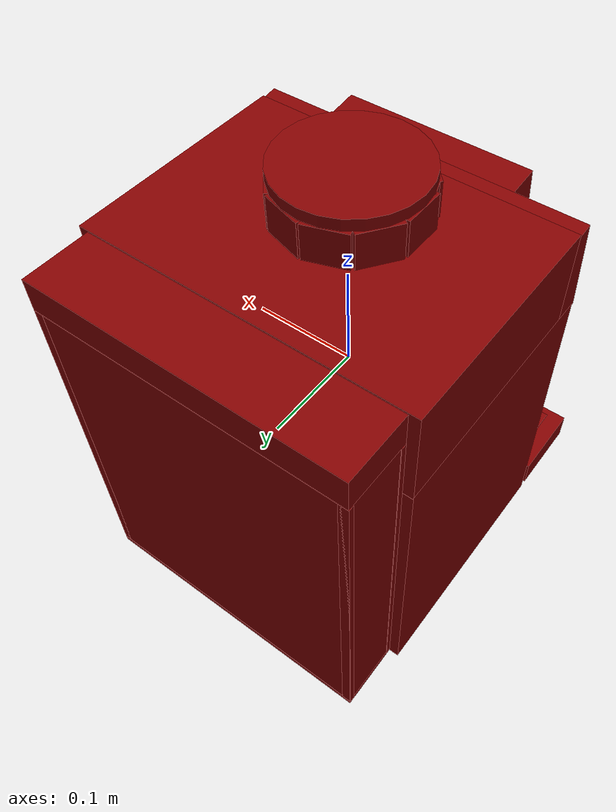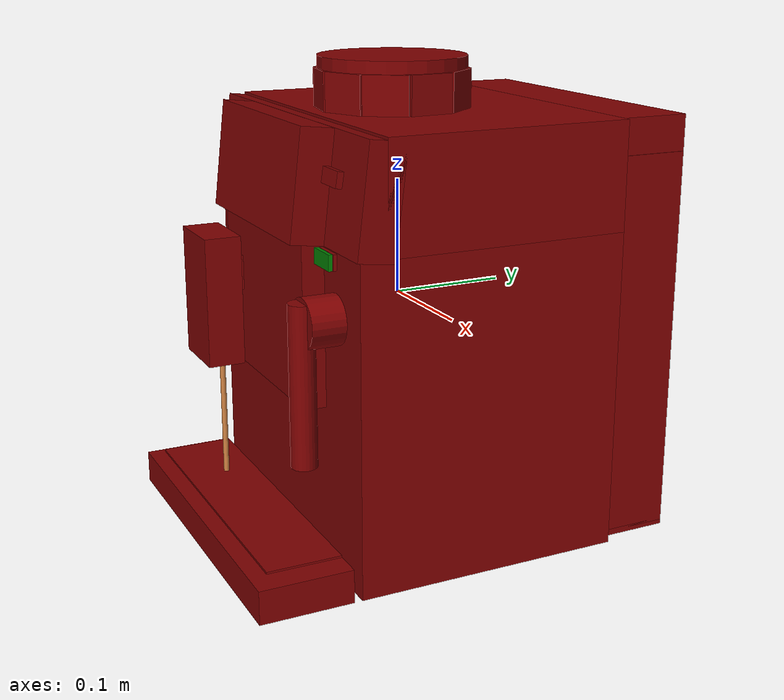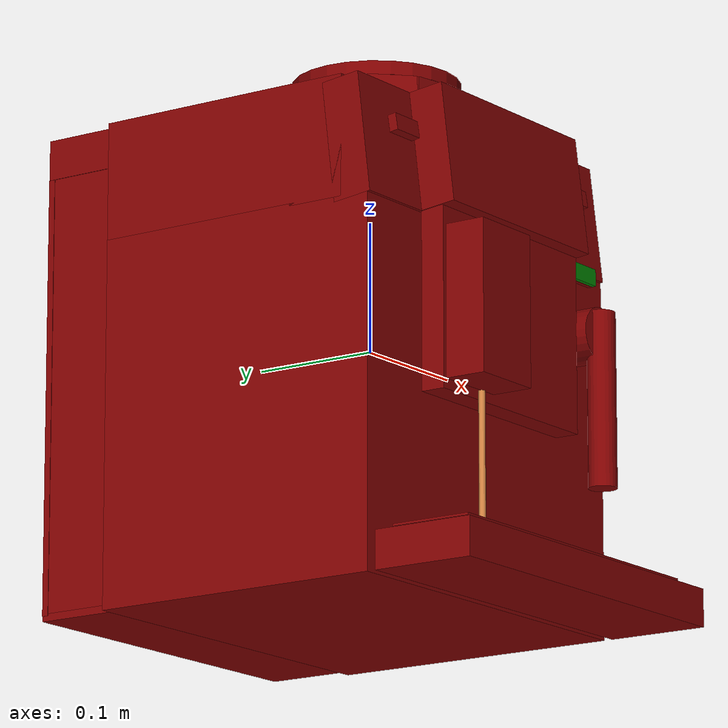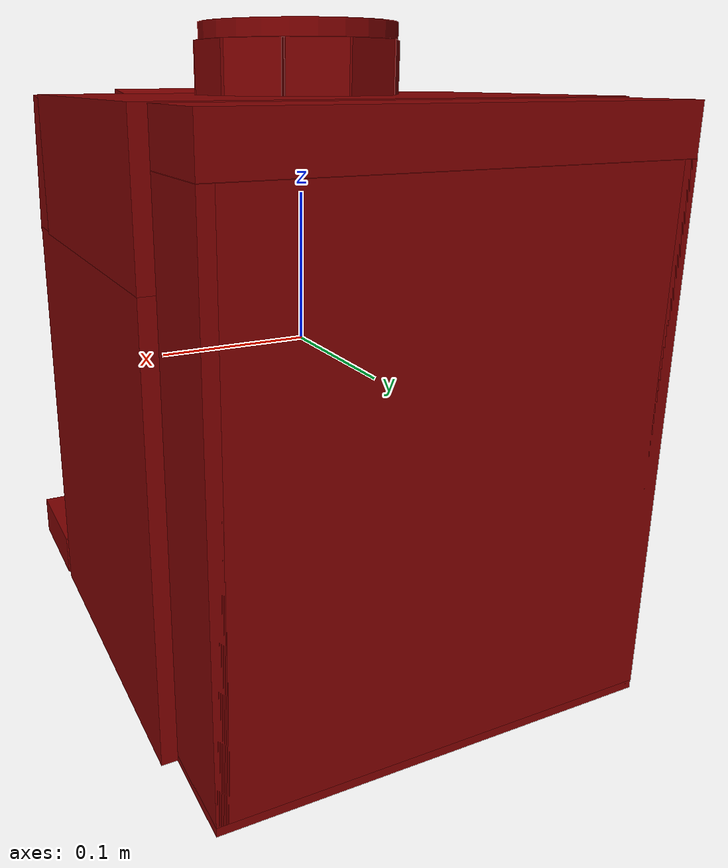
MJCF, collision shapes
<?xml version='1.0' encoding='UTF-8'?>
<mujoco model="model">
  <compiler angle="radian"/>
  <asset>
    <mesh file="visuals/Body001.obj" name="Body001_vis"/>
    <mesh file="visuals/Body002.obj" name="Body002_vis"/>
    <mesh file="visuals/Button001.obj" name="Button001_vis"/>
    <mesh file="visuals/Button002.obj" name="Button002_vis"/>
    <mesh file="visuals/Button003.obj" name="Button003_vis"/>
    <mesh file="visuals/Container001_Clear.obj" name="Container001_Clear_vis"/>
    <mesh file="visuals/Container002_Clear.obj" name="Container002_Clear_vis"/>
    <mesh file="visuals/Lid001.obj" name="Lid001_vis"/>
    <mesh file="visuals/Lid002.obj" name="Lid002_vis"/>
    <mesh file="visuals/Lid003_Clear.obj" name="Lid003_Clear_vis"/>
    <texture file="visuals/T_BC001.png" name="Body001_material" type="2d"/>
    <material name="Body001_material" rgba="1 1 1 1.0" texture="Body001_material" shininess="0.141421377658844" specular="0.3103448502657381"/>
    <texture file="visuals/T_BC001.png" name="Body002_material" type="2d"/>
    <material name="Body002_material" rgba="1 1 1 1.0" texture="Body002_material" shininess="0.141421377658844" specular="0.3103448502657381"/>
    <texture file="visuals/T_BC001.png" name="Button001_material" type="2d"/>
    <material name="Button001_material" rgba="1 1 1 1.0" texture="Button001_material" shininess="0.141421377658844" specular="0.3103448502657381"/>
    <texture file="visuals/T_BC001.png" name="Button002_material" type="2d"/>
    <material name="Button002_material" rgba="1 1 1 1.0" texture="Button002_material" shininess="0.141421377658844" specular="0.3103448502657381"/>
    <texture file="visuals/T_BC001.png" name="Button003_material" type="2d"/>
    <material name="Button003_material" rgba="1 1 1 1.0" texture="Button003_material" shininess="0.141421377658844" specular="0.3103448502657381"/>
    <texture file="visuals/T_BC001.png" name="Container001_Clear_material" type="2d"/>
    <material name="Container001_Clear_material" rgba="1 1 1 0.162162184715271" texture="Container001_Clear_material" shininess="0.141421377658844" specular="0.3103448502657381"/>
    <texture file="visuals/T_BC001.png" name="Lid002_material" type="2d"/>
    <material name="Lid002_material" rgba="1 1 1 1.0" texture="Lid002_material" shininess="0.141421377658844" specular="0.3103448502657381"/>
    <texture file="visuals/T_BC001.png" name="Container002_Clear_material" type="2d"/>
    <material name="Container002_Clear_material" rgba="1 1 1 0.162162184715271" texture="Container002_Clear_material" shininess="0.141421377658844" specular="0.3103448502657381"/>
    <texture file="visuals/T_BC001.png" name="Lid003_Clear_material" type="2d"/>
    <material name="Lid003_Clear_material" rgba="1 1 1 0.162162184715271" texture="Lid003_Clear_material" shininess="0.141421377658844" specular="0.3103448502657381"/>
    <texture file="visuals/T_BC001.png" name="Lid001_material" type="2d"/>
    <material name="Lid001_material" rgba="1 1 1 1.0" texture="Lid001_material" shininess="0.141421377658844" specular="0.3103448502657381"/>
  </asset>
  <default>
    <default class="visual">
      <geom conaffinity="0" contype="0" group="1" type="mesh"/>
    </default>
    <default class="collision">
      <geom group="0" rgba="0.5 0 0 0.5"/>
    </default>
    <default class="spawn">
      <geom group="0" rgba="1 1 1 0.5" contype="0" conaffinity="0"/>
      <site group="0" rgba="1 1 1 0.5"/>
    </default>
    <default class="region">
      <geom group="1" conaffinity="0" contype="0" rgba="0 1 0 0"/>
    </default>
  </default>
  <worldbody>
    <body>
      <body name="object">
        <geom class="collision" type="box" pos="0.11097415536642075 -0.11736904084682465 0.06666746735572815" size="0.013786286115646362 0.0016257489332929254 0.006435349117964506" quat="0.9999545216560364 -0.009536411613225937 1.4419180827452864e-17 1.0791499600991837e-18" name="start_button_1" rgba="0.0 0.5 0 0.5"/>
        <site type="cylinder" rgba="0.8 0.5 0.25 1" size="0.0024869528133422136 0.05607910826802254" pos="-0.06403755396604538 -0.1430312991142273 -0.1188051849603653" name="coffee_liquid"/>
        <site rgba="0 0 0 0" size="0.009999999776482582 0.009999999776482582" pos="-0.06403755396604538 -0.1430312991142273 -0.1668548732995987" name="receptacle_place_site"/>
        <geom mesh="Body001_vis" type="mesh" solimp="0.998 0.998 0.001" solref="0.001 1" density="100" friction="0.95 0.3 0.1" class="visual" material="Body001_material"/>
        <geom class="collision" type="box" pos="-0.00014854967594146729 0.011882737278938293 -0.06582155078649521" size="0.15222634375095367 0.1174095943570137 0.13884788751602173" quat="1.0 0.0 0.0 0.0"/>
        <geom class="collision" type="box" pos="-0.00014854967594146729 -0.15239529311656952 -0.19027221202850342" size="0.15222634375095367 0.03987590968608856 0.014397211372852325" quat="1.0 0.0 0.0 0.0"/>
        <geom class="collision" type="box" pos="-0.00014854967594146729 0.023428840562701225 0.11699657142162323" size="0.15222634375095367 0.10586349666118622 0.04567587003111839" quat="1.0 0.0 0.0 0.0"/>
        <geom class="collision" type="box" pos="-0.00014854967594146729 -0.08671363443136215 0.11482749879360199" size="0.15222632884979248 0.015721241012215614 0.04580586031079292" quat="0.9982902407646179 -0.05845162272453308 -0.0 0.0"/>
        <geom class="collision" type="box" pos="-0.06376469880342484 -0.12180949747562408 0.019615599885582924" size="0.015217606909573078 0.015217606909573078 0.015217606909573078" quat="1.0 0.0 0.0 0.0"/>
        <geom class="collision" type="box" pos="-0.06338579952716827 -0.1485673040151596 -0.0009533613920211792" size="0.029969006776809692 0.016063755378127098 0.05685483664274216" quat="1.0 0.0 0.0 0.0"/>
        <geom class="collision" type="cylinder" pos="0.10695391148328781 -0.11346785724163055 0.016666878014802933" size="0.020816057920455933 0.020816057920455933" quat="0.7071068286895752 0.7071067690849304 0.0 0.0"/>
        <geom class="collision" type="cylinder" pos="0.10695391148328781 -0.13467346131801605 -0.033816948533058167" size="0.01090256031602621 0.0671624094247818" quat="1.0 0.0 0.0 0.0"/>
        <geom class="collision" type="box" pos="0.0007433329010382295 -0.11367765814065933 0.11799594014883041" size="0.08846832066774368 0.016827519983053207 0.045675866305828094" quat="0.9982902407646179 -0.05845162272453308 -0.0 0.0"/>
        <geom class="collision" type="box" pos="0.00015142560005187988 -0.11619510501623154 0.0052930209785699844" size="0.08690224587917328 0.009467421099543571 0.06773331761360168" quat="1.0 0.0 0.0 0.0"/>
        <body name="Body002">
          <geom mesh="Body002_vis" type="mesh" solimp="0.998 0.998 0.001" solref="0.001 1" density="100" friction="0.95 0.3 0.1" class="visual" material="Body002_material"/>
        </body>
        <body name="Button001">
          <joint axis="-1.9490277747158204e-18 0.9902491569519043 -0.13930730521678925" pos="-0.10995227098464966 -0.10758768767118454 0.12864336371421814" limited="true" name="Button001_joint" range="0.0 0.002" type="slide" damping="1" frictionloss="1" armature=".01" stiffness="0.2" springref="-0.1"/>
          <geom mesh="Button001_vis" type="mesh" solimp="0.998 0.998 0.001" solref="0.001 1" density="100" friction="0.95 0.3 0.1" class="visual" material="Button001_material"/>
          <geom class="collision" type="box" pos="-0.11005851626396179 -0.10759827494621277 0.12869258224964142" size="0.013723230920732021 0.003451156197115779 0.006442605052143335" quat="0.9971855282783508 -0.07497342675924301 1.0610365658406506e-17 2.8891601584069054e-19"/>
        </body>
        <body name="Button002">
          <joint axis="-2.0642680961148706e-18 0.9894748330116272 -0.14470498263835907" pos="0.1110256090760231 -0.10758931934833527 0.12864552438259125" limited="true" name="Button002_joint" range="0.0 0.002" type="slide" damping="1" frictionloss="1" armature=".01" stiffness="0.2" springref="-0.1"/>
          <geom mesh="Button002_vis" type="mesh" solimp="0.998 0.998 0.001" solref="0.001 1" density="100" friction="0.95 0.3 0.1" class="visual" material="Button002_material"/>
          <geom class="collision" type="box" pos="0.11105051636695862 -0.10899491608142853 0.12881505489349365" size="0.013723230920732021 0.002636321121826768 0.006442605052143335" quat="0.9971855282783508 -0.07497342675924301 1.0610365658406506e-17 2.8891601584069054e-19"/>
        </body>
        <body name="Button003">
          <joint axis="-2.1708271569851767e-18 0.9999904632568359 -0.004362225066870451" pos="0.110990509390831 -0.1148148849606514 0.06634871661663055" limited="true" name="Button003_joint" range="0.0 0.002" type="slide" damping="1" frictionloss="1" armature=".01" stiffness="0.2" springref="-0.1"/>
          <geom mesh="Button003_vis" type="mesh" solimp="0.998 0.998 0.001" solref="0.001 1" density="100" friction="0.95 0.3 0.1" class="visual" material="Button003_material"/>
          <geom class="collision" type="box" pos="0.11097415536642075 -0.1136326789855957 0.06659620255231857" size="0.013786286115646362 0.0016257489332929254 0.006435349117964506" quat="0.9999545216560364 -0.009536411613225937 1.4419180827452864e-17 1.0791499600991837e-18"/>
        </body>
        <body name="Container001_Clear">
          <geom mesh="Container001_Clear_vis" type="mesh" solimp="0.998 0.998 0.001" solref="0.001 1" density="100" friction="0.95 0.3 0.1" class="visual" material="Container001_Clear_material"/>
          <geom class="collision" type="box" pos="-0.06069570407271385 -0.005956455133855343 0.17863212525844574" size="0.0027686110697686672 0.019005214795470238 0.016880374401807785" quat="1.0 0.0 0.0 0.0"/>
          <geom class="collision" type="box" pos="-0.04961877316236496 0.0296487994492054 0.17863212525844574" size="0.0027686110697686672 0.019005214795470238 0.016880374401807785" quat="0.9523167014122009 0.0 -0.0 -0.3051113784313202"/>
          <geom class="collision" type="box" pos="-0.019857505336403847 0.0522073432803154 0.17863212525844574" size="0.0027686110697686672 0.019005214795470238 0.016880374401807785" quat="0.8135338425636292 0.0 -0.0 -0.5815175771713257"/>
          <geom class="collision" type="box" pos="0.016498535871505737 0.05350944772362709 0.17863212525844574" size="0.0027686110697686672 0.019005214795470238 0.016880374401807785" quat="0.6035531759262085 0.0 -0.0 -0.7973227500915527"/>
          <geom class="collision" type="box" pos="0.047544214874506 0.033446673303842545 0.17863212525844574" size="0.0027686110697686672 0.019005214795470238 0.016880374401807785" quat="0.33412817120552063 0.0 -0.0 -0.9425276517868042"/>
          <geom class="collision" type="box" pos="0.06133820861577988 -0.0007970458827912807 0.17863212525844574" size="0.0027686110697686672 0.019005214795470238 0.016880374401807785" quat="0.03380401059985161 0.0 -0.0 -0.9994285106658936"/>
          <geom class="collision" type="box" pos="0.05298352241516113 -0.03658311069011688 0.17863212525844574" size="0.0027686108369380236 0.019005214795470238 0.016880374401807785" quat="0.2682803273200989 0.0 0.0 0.9633408784866333"/>
          <geom class="collision" type="box" pos="0.026153795421123505 -0.060858696699142456 0.17863212525844574" size="0.0027686110697686672 0.019005214795470238 0.016880374401807785" quat="0.5414576530456543 0.0 0.0 0.8407280445098877"/>
          <geom class="collision" type="box" pos="-0.010231055319309235 -0.06561355292797089 0.17863212525844574" size="0.0027686110697686672 0.019005214795470238 0.016880374401807785" quat="0.7689027786254883 0.0 0.0 0.6393657326698303"/>
          <geom class="collision" type="box" pos="-0.042421046644449234 -0.04902518168091774 0.17863212525844574" size="0.0027686108369380236 0.019005214795470238 0.016880374401807785" quat="0.9238231182098389 0.0 0.0 0.38281962275505066"/>
          <geom class="collision" type="box" pos="-0.055793069303035736 -0.029499497264623642 0.17863212525844574" size="0.0027686110697686672 0.008690915070474148 0.016880374401807785" quat="0.9826682209968567 0.0 0.0 0.18537317216396332"/>
          <body name="Lid002">
            <joint axis="0.0 0.0 1.0" pos="0.00040850788354873657 -0.005440548062324524 0.20071157813072205" limited="true" name="Lid002_joint" range="0.0 0.06" type="slide" damping="1" frictionloss="1" armature=".01" stiffness="0.05"/>
            <geom mesh="Lid002_vis" type="mesh" solimp="0.998 0.998 0.001" solref="0.001 1" density="100" friction="0.95 0.3 0.1" class="visual" material="Lid002_material"/>
            <geom class="collision" type="cylinder" pos="0.00040850788354873657 -0.005440548062324524 0.20107737183570862" size="0.06373236328363419 0.005221039988100529" quat="1.0 0.0 0.0 0.0"/>
          </body>
        </body>
        <body name="Container002_Clear">
          <joint axis="0.0 0.0 1.0" pos="-0.00018577277660369873 0.161081925034523 -0.036183446645736694" limited="true" name="Container002_Clear_joint" range="0.0 0.1" type="slide" damping="1" frictionloss="1" armature=".01" stiffness="0.05"/>
          <geom mesh="Container002_Clear_vis" type="mesh" solimp="0.998 0.998 0.001" solref="0.001 1" density="100" friction="0.95 0.3 0.1" class="visual" material="Container002_Clear_material"/>
          <geom class="collision" type="box" pos="-0.00040271267062053084 0.161081925034523 -0.20152831077575684" size="0.14280526340007782 0.03109958954155445 0.002834065817296505" quat="1.0 0.0 0.0 0.0"/>
          <geom class="collision" type="box" pos="0.138092502951622 0.161081925034523 -0.034528858959674835" size="0.0043100579641759396 0.03109958954155445 0.1658276617527008" quat="1.0 0.0 0.0 0.0"/>
          <geom class="collision" type="box" pos="-0.138835608959198 0.161081925034523 -0.034528858959674835" size="0.0043100579641759396 0.03109958954155445 0.1658276617527008" quat="1.0 0.0 0.0 0.0"/>
          <geom class="collision" type="box" pos="-0.0008038217201828957 0.18964257836341858 -0.03452885150909424" size="0.14277392625808716 0.0025389317888766527 0.1658276617527008" quat="1.0 0.0 0.0 0.0"/>
          <geom class="collision" type="box" pos="-0.0008038217201828957 0.13290461897850037 -0.03452885150909424" size="0.14277392625808716 0.0025389317888766527 0.1658276617527008" quat="1.0 0.0 0.0 0.0"/>
          <body name="Lid003_Clear">
            <joint axis="0.0 0.0 1.0" pos="-0.00018577277660369873 0.161081925034523 0.14648786187171936" limited="true" name="Lid003_Clear_joint" range="0.0 0.06" type="slide" damping="1" frictionloss="1" armature=".01" stiffness="0.05"/>
            <geom mesh="Lid003_Clear_vis" type="mesh" solimp="0.998 0.998 0.001" solref="0.001 1" density="100" friction="0.95 0.3 0.1" class="visual" material="Lid003_Clear_material"/>
            <geom class="collision" type="box" pos="-0.00040271267062053084 0.161081925034523 0.1467975676059723" size="0.14280526340007782 0.03109958954155445 0.015227675437927246" quat="1.0 0.0 0.0 0.0"/>
          </body>
        </body>
        <body name="Lid001">
          <joint axis="0.0 0.0 1.0" pos="0.00017384439706802368 -0.14820943772792816 -0.17029336094856262" limited="true" name="Lid001_joint" range="0.0 0.06" type="slide" damping="1" frictionloss="1" armature=".01" stiffness="0.05"/>
          <geom mesh="Lid001_vis" type="mesh" solimp="0.998 0.998 0.001" solref="0.001 1" density="100" friction="0.95 0.3 0.1" class="visual" material="Lid001_material"/>
          <geom class="collision" type="box" pos="0.00017384439706802368 -0.14820943772792816 -0.17029336094856262" size="0.13666369020938873 0.031855128705501556 0.0008789396961219609" quat="1.0 0.0 0.0 0.0"/>
        </body>
        <geom class="region" name="reg_main" type="box" pos="0.0 0.0 0.0" size="0.1520555019378662 0.19127140939235687 0.20601558685302734"/>
      </body>
    </body>
  </worldbody>
  <actuator>
    <motor name="Button001_joint_actuator" joint="Button001_joint" gear="0.5"/>
    <motor name="Button002_joint_actuator" joint="Button002_joint" gear="0.5"/>
    <motor name="Button003_joint_actuator" joint="Button003_joint" gear="0.5"/>
    <motor name="Container002_Clear_joint_actuator" joint="Container002_Clear_joint" gear="10"/>
    <motor name="Lid001_joint_actuator" joint="Lid001_joint" gear="10"/>
    <motor name="Lid002_joint_actuator" joint="Lid002_joint" gear="10"/>
    <motor name="Lid003_Clear_joint_actuator" joint="Lid003_Clear_joint" gear="10"/>
  </actuator>
</mujoco>
